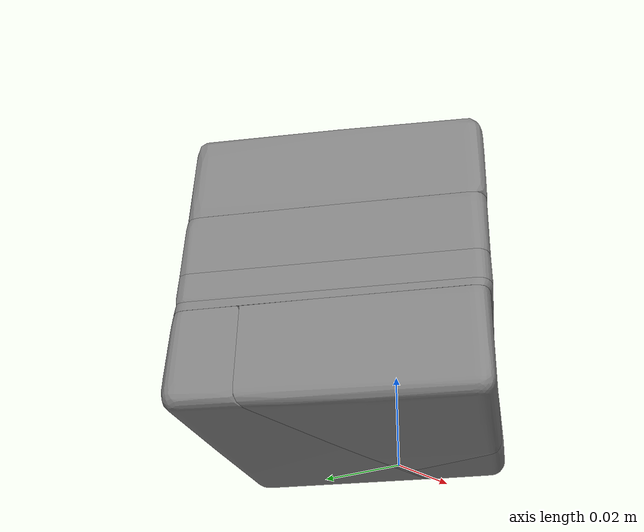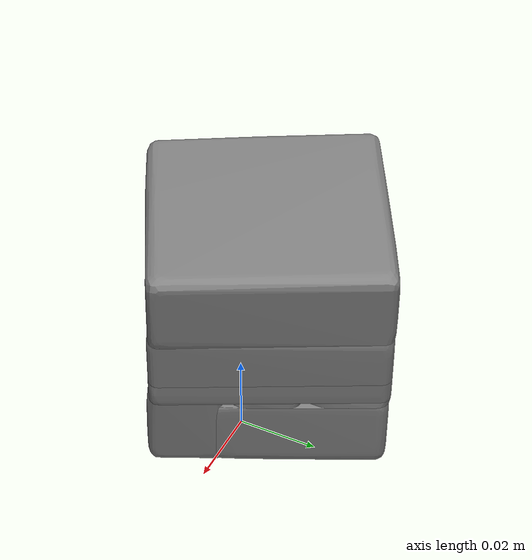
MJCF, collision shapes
<mujoco model="ycb_077_rubiks_cube">
  <compiler meshdir="meshes" texturedir="meshes" angle="radian"/>
  <default>
    <default class="visual"><geom contype="0" conaffinity="0" group="2" density="0"/></default>
    <default class="collision"><geom group="3"/></default>
  </default>
  <asset>
    <texture name="ycb_077_rubiks_cube_tex" type="2d" file="ycb_077_rubiks_cube_texture.png"/>
    <material name="ycb_077_rubiks_cube_mat" texture="ycb_077_rubiks_cube_tex" specular="0.2" shininess="0.3"/>
    <mesh name="ycb_077_rubiks_cube_visual" file="ycb_077_rubiks_cube_visual.obj"/>
    <mesh name="ycb_077_rubiks_cube_hull0" file="ycb_077_rubiks_cube_hull0.obj"/>
    <mesh name="ycb_077_rubiks_cube_hull1" file="ycb_077_rubiks_cube_hull1.obj"/>
    <mesh name="ycb_077_rubiks_cube_hull2" file="ycb_077_rubiks_cube_hull2.obj"/>
    <mesh name="ycb_077_rubiks_cube_hull3" file="ycb_077_rubiks_cube_hull3.obj"/>
    <mesh name="ycb_077_rubiks_cube_hull4" file="ycb_077_rubiks_cube_hull4.obj"/>
    <mesh name="ycb_077_rubiks_cube_hull5" file="ycb_077_rubiks_cube_hull5.obj"/>
    <mesh name="ycb_077_rubiks_cube_hull6" file="ycb_077_rubiks_cube_hull6.obj"/>
    <mesh name="ycb_077_rubiks_cube_hull7" file="ycb_077_rubiks_cube_hull7.obj"/>
  </asset>
  <worldbody>
    <body name="object" pos="0 0 0">
      <freejoint name="object_free"/>
      <geom type="mesh" mesh="ycb_077_rubiks_cube_visual" material="ycb_077_rubiks_cube_mat" class="visual"/>
      <geom type="mesh" mesh="ycb_077_rubiks_cube_hull0" class="collision"/>
      <geom type="mesh" mesh="ycb_077_rubiks_cube_hull1" class="collision"/>
      <geom type="mesh" mesh="ycb_077_rubiks_cube_hull2" class="collision"/>
      <geom type="mesh" mesh="ycb_077_rubiks_cube_hull3" class="collision"/>
      <geom type="mesh" mesh="ycb_077_rubiks_cube_hull4" class="collision"/>
      <geom type="mesh" mesh="ycb_077_rubiks_cube_hull5" class="collision"/>
      <geom type="mesh" mesh="ycb_077_rubiks_cube_hull6" class="collision"/>
      <geom type="mesh" mesh="ycb_077_rubiks_cube_hull7" class="collision"/>
    </body>
  </worldbody>
</mujoco>
